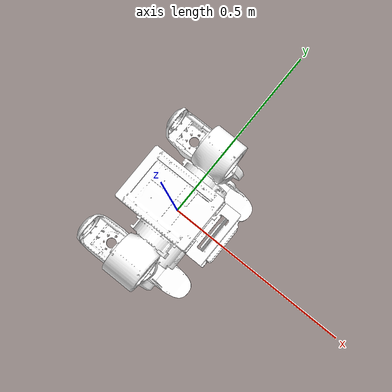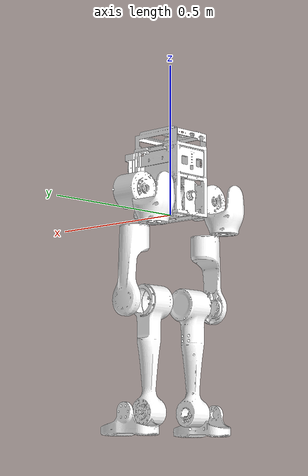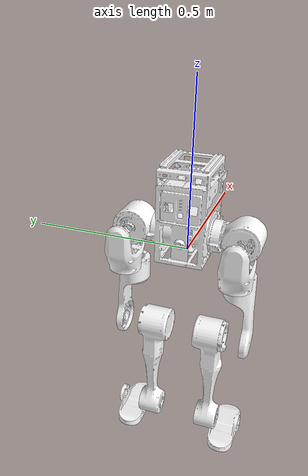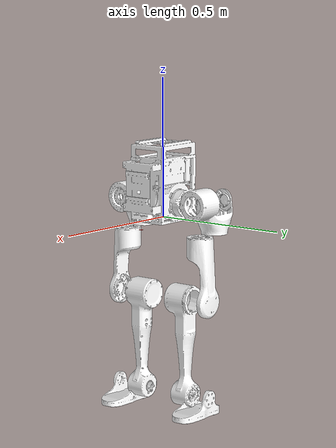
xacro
<?xml version="1.0"?>

<robot name="sf_tron2_description" xmlns:xacro="http://www.ros.org/wiki/xacro">
    <xacro:arg name="use_gazebo" default="false"/>
    <xacro:arg name="use_support" default="false"/>

    <!-- Include all component files -->
    <xacro:include filename="$(find robot_description)/tron2/SF_TRON2/xacro/const.xacro"/>
    <xacro:include filename="$(find robot_description)/tron2/SF_TRON2/xacro/materials.xacro"/>
    <xacro:include filename="$(find robot_description)/tron2/SF_TRON2/xacro/leg.xacro"/>
    <xacro:include filename="$(find robot_description)/tron2/SF_TRON2/xacro/camera.xacro"/>
    <xacro:include filename="$(find robot_description)/tron2/SF_TRON2/xacro/gazebo.xacro"/>
    <xacro:include filename="$(find robot_description)/tron2/SF_TRON2/xacro/ros2_control_interface.xacro"/>

    <!-- Base Link -->
    <link name="base_Link">
        <inertial>
            <origin xyz="${base_com_x} ${base_com_y} ${base_com_z}" rpy="0 0 0"/>
            <mass value="${base_mass}"/>
            <inertia ixx="${base_ixx}" ixy="${base_ixy}" ixz="${base_ixz}"
                     iyy="${base_iyy}" iyz="${base_iyz}" izz="${base_izz}"/>
        </inertial>
        <visual>
            <origin xyz="0 0 0" rpy="0 0 0"/>
            <geometry>
                <mesh filename="$(find robot_description)/tron2/SF_TRON2/meshes/base_Link.STL"/>
            </geometry>
            <material name="grey"/>
        </visual>
        <collision>
            <origin xyz="0 0 0" rpy="0 0 0"/>
            <geometry>
                <mesh filename="$(find robot_description)/tron2/SF_TRON2/meshes/base_Link.STL"/>
            </geometry>
        </collision>
    </link>

    <!-- IMU Link -->
    <joint name="limx_imu_joint" type="fixed">
        <origin rpy="0. 0. 0." xyz="0. 0. 0."/>
        <parent link="base_Link"/>
        <child link="limx_imu"/>
    </joint>

    <link name="limx_imu">
        <inertial>
            <mass value="${imu_mass}"/>
            <origin rpy="0 0 0" xyz="0 0 0"/>
            <inertia ixx="0.000001" ixy="0" ixz="0" iyy="0.000001" iyz="0" izz="0.000001"/>
        </inertial>
        <visual>
            <origin rpy="0 0 0" xyz="0 0 0"/>
            <geometry>
                <box size="0.015 0.015 0.004"/>
            </geometry>
            <material name="orange"/>
        </visual>
    </link>

    <!-- Additional IMU link for ros2_control compatibility -->
    <joint name="imu_Joint" type="fixed">
        <parent link="base_Link"/>
        <child link="imu_Link"/>
        <origin rpy="0 0 0" xyz="0 0 0"/>
    </joint>

    <link name="imu_Link">
        <inertial>
            <mass value="0.001"/>
            <origin rpy="0 0 0" xyz="0 0 0"/>
            <inertia ixx="0.0001" ixy="0" ixz="0" iyy="0.0001" iyz="0" izz="0.0001"/>
        </inertial>
        <visual>
            <origin rpy="0 0 0" xyz="0 0 0"/>
            <geometry>
                <box size="0.015 0.015 0.004"/>
            </geometry>
        </visual>
    </link>

    <!-- Left and Right Legs -->
    <xacro:leg name="L" mirror="1">
        <origin rpy="0 0 0" xyz="0 0 0"/>
    </xacro:leg>

    <xacro:leg name="R" mirror="-1">
        <origin rpy="0 0 0" xyz="0 0 0"/>
    </xacro:leg>

    <!-- Support mode will add an additional stick on the top -->
    <xacro:if value="$(arg use_support)">
        <link name="world"/>
        <joint name="base_static_Joint" type="fixed">
            <origin rpy="0 0 0" xyz="0 0 0.3"/>
            <parent link="world"/>
            <child link="base_Link"/>
        </joint>
    </xacro:if>

    <!-- ROS2 Control Configuration -->
    <xacro:if value="$(arg use_gazebo)">
        <ros2_control name="tron2_gazebo_ros2_control_settings" type="system">
            <hardware>
                <plugin>tron2_gazebo/Tron2HWSim</plugin>
            </hardware>
            <xacro:leg_ros2_control_interface leg_name="L"/>
            <xacro:leg_ros2_control_interface leg_name="R"/>
            <sensor name="imu_sensor">
                <frame_id name="imu_Link"/>
                <state_interface name="orientation.x"/>
                <state_interface name="orientation.y"/>
                <state_interface name="orientation.z"/>
                <state_interface name="orientation.w"/>
                <state_interface name="angular_velocity.x"/>
                <state_interface name="angular_velocity.y"/>
                <state_interface name="angular_velocity.z"/>
                <state_interface name="linear_acceleration.x"/>
                <state_interface name="linear_acceleration.y"/>
                <state_interface name="linear_acceleration.z"/>
            </sensor>
        </ros2_control>

        <gazebo>
            <plugin filename="libgazebo_ros2_control.so" name="gazebo_ros2_control">
                <robot_sim_type>tron2_gazebo/Tron2HWSim</robot_sim_type>
                <parameters>$(find tron2_gazebo)/config/default_tron2.yaml</parameters>
            </plugin>
        </gazebo>
    </xacro:if>

</robot>

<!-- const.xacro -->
<robot name="sf_tron2" xmlns:xacro="http://www.ros.org/wiki/xacro">

    <!-- Constants for robot dimensions -->
    <xacro:property name="PI" value="3.1415926535897931"/>

    <!-- joint limits -->
    <xacro:property name="damping" value="0.0"/>
    <xacro:property name="friction" value="0.0"/>

    <!-- IMU parameters -->
    <xacro:property name="imu_mass" value="0.01"/>

    <!-- Base Link parameters -->
    <xacro:property name="base_mass" value="10.94"/>
    <xacro:property name="base_com_x" value="0.00656"/>
    <xacro:property name="base_com_y" value="0.001"/>
    <xacro:property name="base_com_z" value="0.12055"/>
    <xacro:property name="base_ixx" value="0.10814592"/>
    <xacro:property name="base_ixy" value="0.00070438"/>
    <xacro:property name="base_ixz" value="0.00180329"/>
    <xacro:property name="base_iyy" value="0.1118876"/>
    <xacro:property name="base_iyz" value="0.00110226"/>
    <xacro:property name="base_izz" value="0.07968023"/>

    <!-- Abad Link parameters (left) -->
    <xacro:property name="abad_mass" value="2.16"/>
    <xacro:property name="abad_com_x" value="-0.00585"/>
    <xacro:property name="abad_com_y" value="0.06636"/>
    <xacro:property name="abad_com_z" value="-0.0004"/>
    <xacro:property name="abad_ixx" value="0.00461832"/>
    <xacro:property name="abad_ixy" value="0.00000691"/>
    <xacro:property name="abad_ixz" value="0.00000837"/>
    <xacro:property name="abad_iyy" value="0.0036266"/>
    <xacro:property name="abad_iyz" value="0.00000188"/>
    <xacro:property name="abad_izz" value="0.00371921"/>

    <!-- Hip Link parameters (left) -->
    <xacro:property name="hip_mass" value="0.62"/>
    <xacro:property name="hip_com_x" value="0.03454"/>
    <xacro:property name="hip_com_y" value="0.00074"/>
    <xacro:property name="hip_com_z" value="-0.05537"/>
    <xacro:property name="hip_ixx" value="0.00161988"/>
    <xacro:property name="hip_ixy" value="-0.00000677"/>
    <xacro:property name="hip_ixz" value="0.00005921"/>
    <xacro:property name="hip_iyy" value="0.00229105"/>
    <xacro:property name="hip_iyz" value="-0.00000259"/>
    <xacro:property name="hip_izz" value="0.00163377"/>

    <!-- Yaw Link parameters (left) -->
    <xacro:property name="yaw_mass" value="1.82"/>
    <xacro:property name="yaw_com_x" value="0.00294"/>
    <xacro:property name="yaw_com_y" value="-0.00009"/>
    <xacro:property name="yaw_com_z" value="-0.08263"/>
    <xacro:property name="yaw_ixx" value="0.01407104"/>
    <xacro:property name="yaw_ixy" value="-0.00000181"/>
    <xacro:property name="yaw_ixz" value="0.00037981"/>
    <xacro:property name="yaw_iyy" value="0.0137125"/>
    <xacro:property name="yaw_iyz" value="-0.00003338"/>
    <xacro:property name="yaw_izz" value="0.00304924"/>

    <!-- Knee Link parameters (left) -->
    <xacro:property name="knee_mass" value="3.39"/>
    <xacro:property name="knee_com_x" value="0.00024"/>
    <xacro:property name="knee_com_y" value="0.03439"/>
    <xacro:property name="knee_com_z" value="-0.14948"/>
    <xacro:property name="knee_ixx" value="0.07632531"/>
    <xacro:property name="knee_ixy" value="0.00001890"/>
    <xacro:property name="knee_ixz" value="0.00006976"/>
    <xacro:property name="knee_iyy" value="0.07685607"/>
    <xacro:property name="knee_iyz" value="0.00075049"/>
    <xacro:property name="knee_izz" value="0.00384986"/>

    <!-- Foot Link parameters -->
    <xacro:property name="foot_mass" value="0.90"/>
    <xacro:property name="foot_com_x" value="0.01691"/>
    <xacro:property name="foot_com_y" value="-0.03589"/>
    <xacro:property name="foot_com_z" value="-0.04454"/>
    <xacro:property name="foot_ixx" value="0.00125164"/>
    <xacro:property name="foot_ixy" value="0.00001843"/>
    <xacro:property name="foot_ixz" value="0.00014738"/>
    <xacro:property name="foot_iyy" value="0.00296403"/>
    <xacro:property name="foot_iyz" value="-0.00008693"/>
    <xacro:property name="foot_izz" value="0.00334669"/>

    <!-- Joint positions and orientations -->
    <!-- Abad joint position -->
    <xacro:property name="abad_offset_x" value="-0.00045"/>
    <xacro:property name="abad_offset_y" value="0.09949"/>
    <xacro:property name="abad_offset_z" value="0.06046"/>
    <xacro:property name="abad_R_offset_x" value="-0.00045"/>
    <xacro:property name="abad_R_offset_y" value="-0.09949"/>
    <xacro:property name="abad_R_offset_z" value="0.06046"/>

    <!-- Hip joint position -->
    <xacro:property name="hip_offset_x" value="-0.0416"/>
    <xacro:property name="hip_offset_y" value="0.0681"/>
    <xacro:property name="hip_offset_z" value="0.0"/>
    <xacro:property name="hip_R_offset_x" value="-0.0416"/>
    <xacro:property name="hip_R_offset_y" value="-0.0681"/>
    <xacro:property name="hip_R_offset_z" value="0.0"/>

    <!-- Yaw joint position -->
    <xacro:property name="yaw_offset_x" value="0.0416"/>
    <xacro:property name="yaw_offset_y" value="0.0"/>
    <xacro:property name="yaw_offset_z" value="-0.1142"/>
    <xacro:property name="yaw_R_offset_x" value="0.0416"/>
    <xacro:property name="yaw_R_offset_y" value="-0.0"/>
    <xacro:property name="yaw_R_offset_z" value="-0.1142"/>

    <!-- Knee joint position -->
    <xacro:property name="knee_offset_x" value="0.0"/>
    <xacro:property name="knee_offset_y" value="-0.03432"/>
    <xacro:property name="knee_offset_z" value="-0.2366"/>

    <!-- Foot joint position -->
    <xacro:property name="foot_offset_x" value="0.0"/>
    <xacro:property name="foot_offset_y" value="0.07148"/>
    <xacro:property name="foot_R_offset_y" value="-0.07148"/>
    <xacro:property name="foot_offset_z" value="-0.35"/>

    <!-- Joint limits -->
    <!-- Abad joint limits -->
    <xacro:property name="abad_lower" value="-3.141592653589793"/>
    <xacro:property name="abad_upper" value="2.600540585471551"/>
    <xacro:property name="abad_effort" value="130"/>
    <xacro:property name="abad_velocity" value="12.57"/>

    <!-- Hip joint limits -->
    <xacro:property name="hip_L_lower" value="-0.2617993877991494"/>
    <xacro:property name="hip_L_upper" value="2.9670597283903604"/>
    <xacro:property name="hip_R_lower" value="-2.9670597283903604"/>
    <xacro:property name="hip_R_upper" value="0.2617993877991494"/>
    <xacro:property name="hip_effort" value="130"/>
    <xacro:property name="hip_velocity" value="12.57"/>

    <!-- Yaw joint limits -->
    <xacro:property name="yaw_L_lower" value="-0.5235987755982988"/>
    <xacro:property name="yaw_L_upper" value="4.625122517784973"/>
    <xacro:property name="yaw_R_lower" value="-4.625122517784973"/>
    <xacro:property name="yaw_R_upper" value="0.5235987755982988"/>
    <xacro:property name="yaw_effort" value="60"/>
    <xacro:property name="yaw_velocity" value="14.66"/>

    <!-- Knee joint limits -->
    <xacro:property name="knee_lower" value="-0.5235987755982988"/>
    <xacro:property name="knee_upper" value="2.6179938779914944"/>
    <xacro:property name="knee_effort" value="60"/>
    <xacro:property name="knee_velocity" value="14.66"/>

    <!-- Foot joint limits -->
    <xacro:property name="foot_lower" value="-1.6929693744344996"/>
    <xacro:property name="foot_upper" value="1.6929693744344996"/>
    <xacro:property name="foot_effort" value="40"/>
    <xacro:property name="foot_velocity" value="31.83"/>

    <!-- Hip joint axis for left and right legs -->
    <xacro:property name="hip_axis_x" value="1"/>
    <xacro:property name="hip_axis_y" value="0"/>
    <xacro:property name="hip_axis_z" value="0"/>

    <!-- Yaw joint axis for left and right legs -->
    <xacro:property name="yaw_axis_x" value="0"/>
    <xacro:property name="yaw_axis_y" value="0"/>
    <xacro:property name="yaw_axis_z" value="1"/>

</robot>

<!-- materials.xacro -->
<robot>

    <material name="grey">
        <color rgba="1 1 1 1"/>
    </material>

    <material name="white">
        <color rgba="1.0 1.0 1.0 1.0"/>
    </material>

    <material name="orange">
        <color rgba="1.0 0.423 0.039 1.0"/>
    </material>

</robot>

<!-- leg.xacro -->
<robot xmlns:xacro="http://www.ros.org/wiki/xacro">

    <xacro:include filename="$(find robot_description)/tron2/SF_TRON2/xacro/transmission.xacro"/>

    <xacro:macro name="leg" params="name mirror *origin">

        <joint name="abad_${name}_Joint" type="revolute">
            <xacro:if value="${name == 'L'}">
                <origin xyz="${abad_offset_x} ${abad_offset_y} ${abad_offset_z}" rpy="0 0 0"/>
            </xacro:if>
            <xacro:if value="${name == 'R'}">
                <origin xyz="${abad_R_offset_x} ${abad_R_offset_y} ${abad_R_offset_z}" rpy="0 0 0"/>
            </xacro:if>
            <parent link="base_Link"/>
            <child link="abad_${name}_Link"/>
            <axis xyz="0 1 0"/>
            <limit lower="${abad_lower}" upper="${abad_upper}" effort="${abad_effort}" velocity="${abad_velocity}"/>
        </joint>

        <link name="abad_${name}_Link">
            <inertial>
                <origin xyz="${abad_com_x} ${abad_com_y*mirror} ${abad_com_z}" rpy="0 0 0"/>
                <mass value="${abad_mass}"/>
                <inertia ixx="${abad_ixx}" ixy="${abad_ixy*mirror}" ixz="${abad_ixz}"
                         iyy="${abad_iyy}" iyz="${abad_iyz*mirror}" izz="${abad_izz}"/>
            </inertial>
            <visual>
                <origin xyz="0 0 0" rpy="0 0 0"/>
                <geometry>
                    <mesh filename="$(find robot_description)/tron2/SF_TRON2/urdf/meshes/abad_${name}_Link.STL"/>
                </geometry>
                <material name="grey"/>
            </visual>
            <collision>
                <origin xyz="0 0 0" rpy="0 0 0"/>
                <geometry>
                    <mesh filename="$(find robot_description)/tron2/SF_TRON2/urdf/meshes/abad_${name}_Link.STL"/>
                </geometry>
            </collision>
        </link>

        <joint name="hip_${name}_Joint" type="revolute">
            <xacro:if value="${name == 'L'}">
                <origin xyz="${hip_offset_x} ${hip_offset_y} ${hip_offset_z}" rpy="0 0 0"/>
            </xacro:if>
            <xacro:if value="${name == 'R'}">
                <origin xyz="${hip_R_offset_x} ${hip_R_offset_y} ${hip_R_offset_z}" rpy="0 0 0"/>
            </xacro:if>
            <parent link="abad_${name}_Link"/>
            <child link="hip_${name}_Link"/>
            <axis xyz="${hip_axis_x} ${hip_axis_y} ${hip_axis_z}"/>
            <xacro:if value="${name == 'L'}">
                <limit lower="${hip_L_lower}" upper="${hip_L_upper}" effort="${hip_effort}" velocity="${hip_velocity}"/>
            </xacro:if>
            <xacro:if value="${name == 'R'}">
                <limit lower="${hip_R_lower}" upper="${hip_R_upper}" effort="${hip_effort}" velocity="${hip_velocity}"/>
            </xacro:if>
        </joint>

        <link name="hip_${name}_Link">
            <inertial>
                <origin xyz="${hip_com_x} ${hip_com_y*mirror} ${hip_com_z}" rpy="0 0 0"/>
                <mass value="${hip_mass}"/>
                <inertia ixx="${hip_ixx}" ixy="${hip_ixy*mirror}" ixz="${hip_ixz}"
                         iyy="${hip_iyy}" iyz="${hip_iyz*mirror}" izz="${hip_izz}"/>
            </inertial>
            <visual>
                <origin xyz="0 0 0" rpy="0 0 0"/>
                <geometry>
                    <mesh filename="$(find robot_description)/tron2/SF_TRON2/urdf/meshes/hip_${name}_Link.STL"/>
                </geometry>
                <material name="grey"/>
            </visual>
            <collision>
                <origin xyz="0 0 0" rpy="0 0 0"/>
                <geometry>
                    <mesh filename="$(find robot_description)/tron2/SF_TRON2/urdf/meshes/hip_${name}_Link.STL"/>
                </geometry>
            </collision>
        </link>

        <joint name="yaw_${name}_Joint" type="revolute">
            <xacro:if value="${name == 'L'}">
                <origin xyz="${yaw_offset_x} ${yaw_offset_y} ${yaw_offset_z}" rpy="0 0 0"/>
            </xacro:if>
            <xacro:if value="${name == 'R'}">
                <origin xyz="${yaw_R_offset_x} ${yaw_R_offset_y} ${yaw_R_offset_z}" rpy="0 0 0"/>
            </xacro:if>
            <parent link="hip_${name}_Link"/>
            <child link="yaw_${name}_Link"/>
            <axis xyz="${yaw_axis_x} ${yaw_axis_y} ${yaw_axis_z}"/>
            <xacro:if value="${name == 'L'}">
                <limit lower="${yaw_L_lower}" upper="${yaw_L_upper}" effort="${yaw_effort}" velocity="${yaw_velocity}"/>
            </xacro:if>
            <xacro:if value="${name == 'R'}">
                <limit lower="${yaw_R_lower}" upper="${yaw_R_upper}" effort="${yaw_effort}" velocity="${yaw_velocity}"/>
            </xacro:if>
        </joint>

        <link name="yaw_${name}_Link">
            <inertial>
                <origin xyz="${yaw_com_x} ${yaw_com_y*mirror} ${yaw_com_z}" rpy="0 0 0"/>
                <mass value="${yaw_mass}"/>
                <inertia ixx="${yaw_ixx}" ixy="${yaw_ixy*mirror}" ixz="${yaw_ixz}"
                         iyy="${yaw_iyy}" iyz="${yaw_iyz*mirror}" izz="${yaw_izz}"/>
            </inertial>
            <visual>
                <origin xyz="0 0 0" rpy="0 0 0"/>
                <geometry>
                    <mesh filename="$(find robot_description)/tron2/SF_TRON2/urdf/meshes/yaw_${name}_Link.STL"/>
                </geometry>
                <material name="grey"/>
            </visual>
            <collision>
                <origin xyz="0 0 0" rpy="0 0 0"/>
                <geometry>
                    <mesh filename="$(find robot_description)/tron2/SF_TRON2/urdf/meshes/yaw_${name}_Link.STL"/>
                </geometry>
            </collision>
        </link>

        <joint name="knee_${name}_Joint" type="revolute">
            <origin xyz="${knee_offset_x} ${knee_offset_y*mirror} ${knee_offset_z}" rpy="0 0 0"/>
            <parent link="yaw_${name}_Link"/>
            <child link="knee_${name}_Link"/>
            <axis xyz="0 1 0"/>
            <limit lower="${knee_lower}" upper="${knee_upper}" effort="${knee_effort}" velocity="${knee_velocity}"/>
        </joint>

        <link name="knee_${name}_Link">
            <inertial>
                <origin xyz="${knee_com_x} ${knee_com_y*mirror} ${knee_com_z}" rpy="0 0 0"/>
                <mass value="${knee_mass}"/>
                <inertia ixx="${knee_ixx}" ixy="${knee_ixy*mirror}" ixz="${knee_ixz}"
                         iyy="${knee_iyy}" iyz="${knee_iyz*mirror}" izz="${knee_izz}"/>
            </inertial>
            <visual>
                <origin xyz="0 0 0" rpy="0 0 0"/>
                <geometry>
                    <mesh filename="$(find robot_description)/tron2/SF_TRON2/urdf/meshes/knee_${name}_Link.STL"/>
                </geometry>
                <material name="grey"/>
            </visual>
            <collision>
                <origin xyz="0 0 0" rpy="0 0 0"/>
                <geometry>
                    <mesh filename="$(find robot_description)/tron2/SF_TRON2/urdf/meshes/knee_${name}_Link.STL"/>
                </geometry>
            </collision>
        </link>

        <joint name="foot_${name}_Joint" type="revolute">
            <xacro:if value="${name == 'L'}">
                <origin xyz="${foot_offset_x} ${foot_offset_y} ${foot_offset_z}" rpy="0 0 0"/>
            </xacro:if>
            <xacro:if value="${name == 'R'}">
                <origin xyz="${foot_offset_x} ${foot_R_offset_y} ${foot_offset_z}" rpy="0 0 0"/>
            </xacro:if>
            <parent link="knee_${name}_Link"/>
            <child link="foot_${name}_Link"/>
            <axis xyz="0 1 0"/>
            <limit lower="${foot_lower}" upper="${foot_upper}" effort="${foot_effort}" velocity="${foot_velocity}"/>
        </joint>

        <link name="foot_${name}_Link">
            <inertial>
                <origin xyz="${foot_com_x} ${foot_com_y*mirror} ${foot_com_z}" rpy="0 0 0"/>
                <mass value="${foot_mass}"/>
                <inertia ixx="${foot_ixx}" ixy="${foot_ixy*mirror}" ixz="${foot_ixz}"
                         iyy="${foot_iyy}" iyz="${foot_iyz*mirror}" izz="${foot_izz}"/>
            </inertial>
            <visual>
                <origin xyz="0 0 0" rpy="0 0 0"/>
                <geometry>
                    <mesh filename="$(find robot_description)/tron2/SF_TRON2/urdf/meshes/foot_${name}_Link.STL"/>
                </geometry>
                <material name="grey"/>
            </visual>
            <collision>
                <origin xyz="0 0 0" rpy="0 0 0"/>
                <geometry>
                    <mesh filename="$(find robot_description)/tron2/SF_TRON2/urdf/meshes/foot_${name}_Link.STL"/>
                </geometry>
            </collision>
        </link>

        <xacro:leg_transmission name="${name}"/>
    </xacro:macro>

</robot>

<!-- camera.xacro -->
<robot xmlns:xacro="http://www.ros.org/wiki/xacro">

    <!-- ****************************************** D435 Camera ******************************************************** -->

    <!-- Main camera link -->
    <link name="d435_Link">
        <visual>
            <origin rpy="1.5707963267948966 0 1.5707963267948966" xyz="0.0 -0.0 0"/>
            <geometry>
                <box size="0.01 0.01 0.001"/>
            </geometry>
            <material name="camera_red">
                <color rgba="1.0 0.0 0.0 1.0"/>
            </material>
        </visual>
    </link>

    <!-- Camera mount joint -->
    <joint name="d435_joint" type="fixed">
        <origin rpy="0 1.5707963267948966 0" xyz="0.12213 0.0 -0.03085"/>
        <parent link="imu_Link"/>
        <child link="d435_Link"/>
    </joint>

    <!-- Camera optical frame -->
    <joint name="d435_optical_joint" type="fixed">
        <origin rpy="-1.5707963267948966 0 -1.5707963267948966" xyz="0 0 0"/>
        <parent link="d435_Link"/>
        <child link="d435_optical_frame"/>
    </joint>
    <link name="d435_optical_frame"/>

    <!-- Gazebo sensor configuration -->
    <gazebo reference="d435_Link">
        <sensor type="depth" name="d435_camera_sensor">
            <pose>0 0 0 0 0 0</pose>
            <update_rate>30</update_rate>
            <visualize>false</visualize>
            <camera>
                <horizontal_fov>1.5177</horizontal_fov>
                <image>
                    <format>B8G8R8</format>
                    <width>848</width>
                    <height>480</height>
                </image>
                <clip>
                    <near>0.1</near>
                    <far>1.8</far>
                </clip>
            </camera>
            <plugin name="camera_controller" filename="libgazebo_ros_camera.so">
                <frame_name>d435_optical_frame</frame_name>
                <min_depth>0.1</min_depth>
                <max_depth>1.8</max_depth>
            </plugin>
        </sensor>
    </gazebo>

    <!-- ****************************************** D435 Camera END ******************************************************** -->

</robot>
